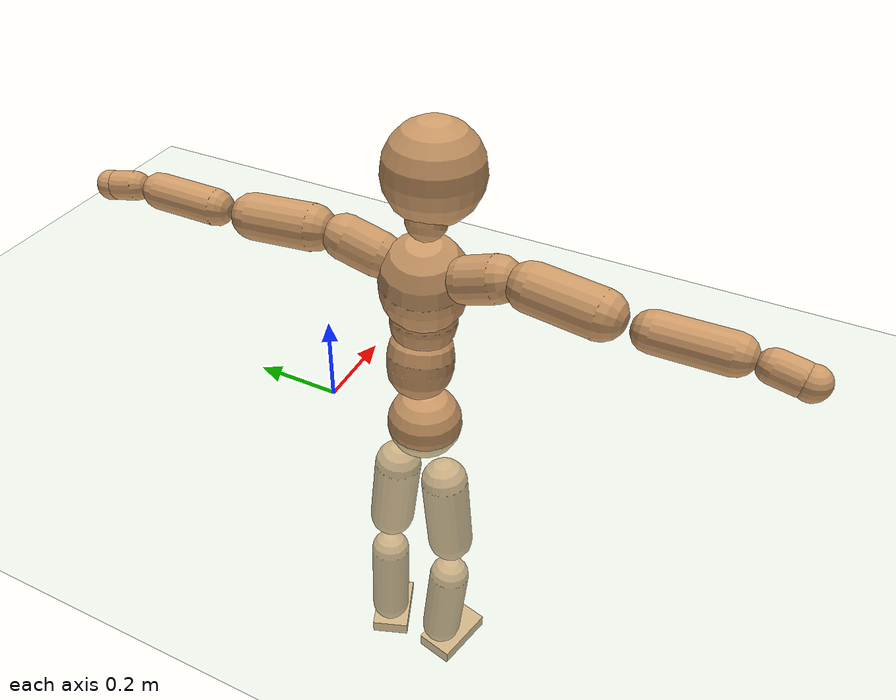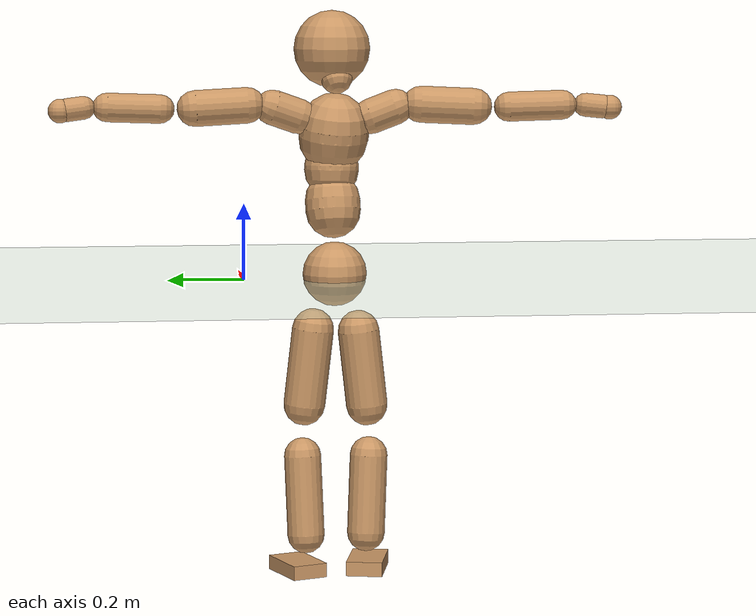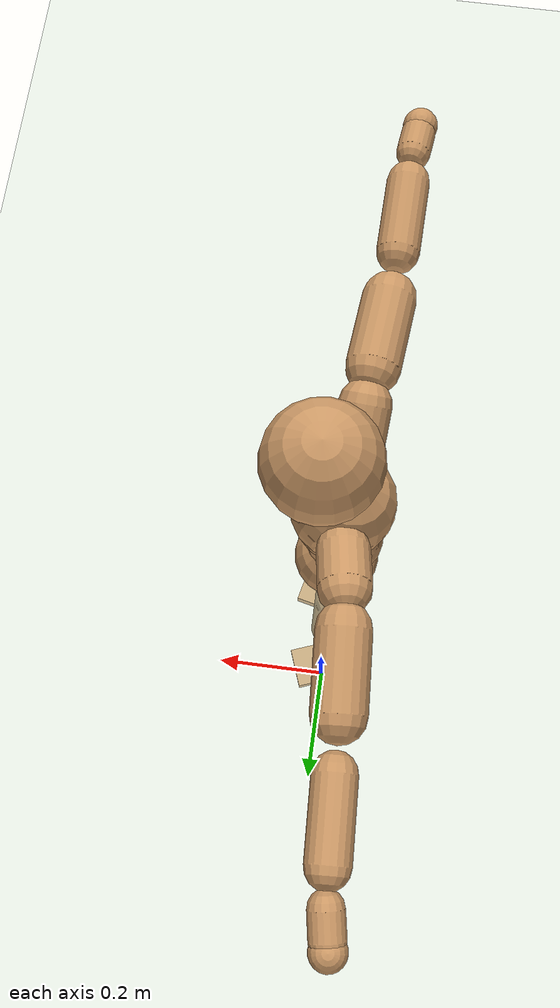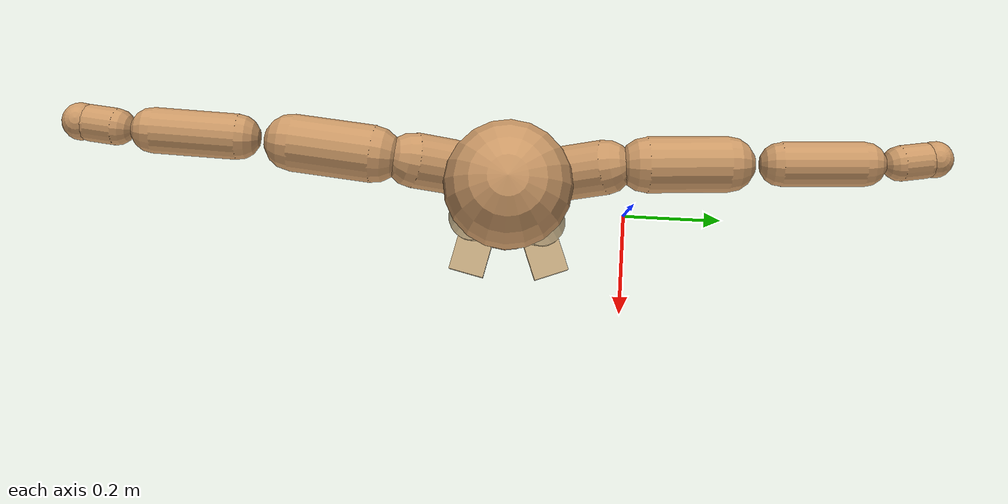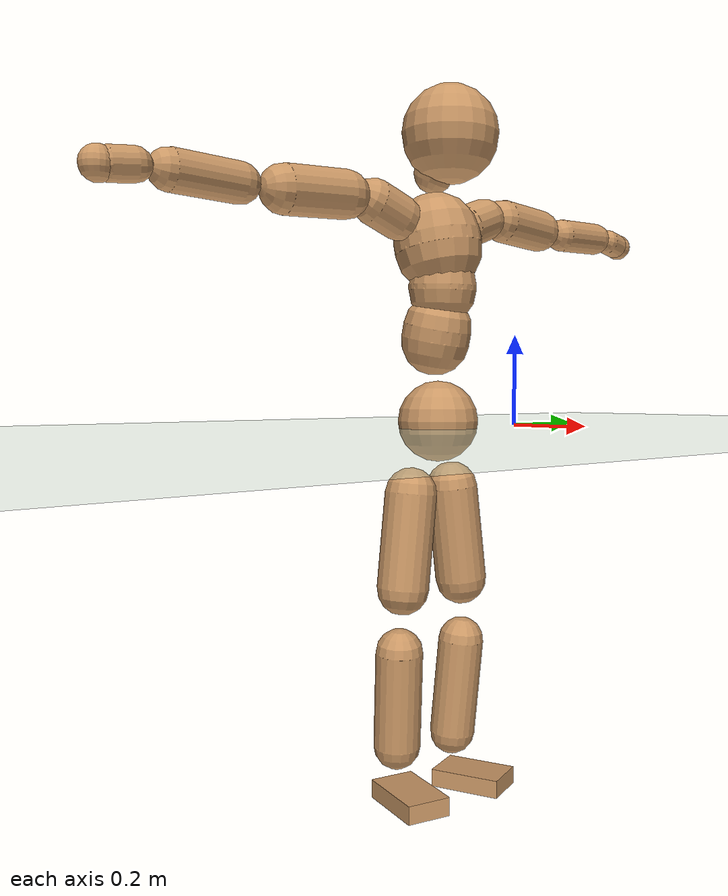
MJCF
<mujoco model="humanoid">
  <compiler coordinate="local" angle="radian"/>
  <default>
    <joint damping="0.0" armature="0.01" stiffness="0.0" limited="true"/>
    <geom conaffinity="1" condim="3" contype="7" margin="0.001" rgba="0.8 0.6 .4 1"/>
  </default>
  <asset>
    <texture type="skybox" builtin="gradient" rgb1=".4 .5 .6" rgb2="0 0 0" width="100" height="100"/>
    <texture builtin="flat" height="1278" mark="cross" markrgb="1 1 1" name="texgeom" random="0.01" rgb1="0.8 0.6 0.4" rgb2="0.8 0.6 0.4" type="cube" width="127"/>
    <texture builtin="checker" height="100" name="texplane" rgb1="0 0 0" rgb2="0.8 0.8 0.8" type="2d" width="100"/>
    <material name="MatPlane" reflectance="0.5" shininess="1" specular="1" texrepeat="60 60" texture="texplane"/>
    <material name="geom" texture="texgeom" texuniform="true"/>
  </asset>
  <worldbody>
    <light cutoff="100" diffuse="1 1 1" dir="-0 0 -1.3" directional="true" exponent="1" pos="0 0 1.3" specular=".1 .1 .1"/>
    <geom conaffinity="1" condim="3" name="floor" pos="0 0 0" rgba="0.8 0.9 0.8 1" size="100 100 .2" type="plane" material="MatPlane"/>
    <body name="Pelvis" pos="-0.0015 -0.2397 0.0129">
      <freejoint name="Pelvis"/>
      <geom type="sphere" contype="1" conaffinity="1" density="500" size="0.0849" pos="0.0000 0.0000 0.0000" name="Pelvis"/>
      <body name="L_Hip" pos="-0.0205 0.0519 -0.0765">
        <joint name="L_Hip_x" type="hinge" pos="0 0 0" axis="1 0 0" stiffness="800" damping="80" armature="0.02" range="-180.0000 180.0000"/>
        <joint name="L_Hip_y" type="hinge" pos="0 0 0" axis="0 1 0" stiffness="800" damping="80" armature="0.02" range="-180.0000 180.0000"/>
        <joint name="L_Hip_z" type="hinge" pos="0 0 0" axis="0 0 1" stiffness="800" damping="80" armature="0.02" range="-180.0000 180.0000"/>
        <geom type="capsule" contype="1" conaffinity="1" density="500" fromto="0.0019 0.0076 -0.0675 0.0074 0.0303 -0.2699" size="0.0549" name="L_Hip"/>
        <body name="L_Knee" pos="0.0093 0.0379 -0.3374">
          <joint name="L_Knee_x" type="hinge" pos="0 0 0" axis="1 0 0" stiffness="800" damping="80" armature="0.02" range="-180.0000 180.0000"/>
          <joint name="L_Knee_y" type="hinge" pos="0 0 0" axis="0 1 0" stiffness="800" damping="80" armature="0.02" range="-180.0000 180.0000"/>
          <joint name="L_Knee_z" type="hinge" pos="0 0 0" axis="0 0 1" stiffness="800" damping="80" armature="0.02" range="-180.0000 180.0000"/>
          <geom type="capsule" contype="1" conaffinity="1" density="500" fromto="-0.0065 -0.0023 -0.0697 -0.0261 -0.0092 -0.2786" size="0.0491" name="L_Knee"/>
          <body name="L_Ankle" pos="-0.0326 -0.0115 -0.3483">
            <joint name="L_Ankle_x" type="hinge" pos="0 0 0" axis="1 0 0" stiffness="800" damping="80" armature="0.02" range="-180.0000 180.0000"/>
            <joint name="L_Ankle_y" type="hinge" pos="0 0 0" axis="0 1 0" stiffness="800" damping="80" armature="0.02" range="-180.0000 180.0000"/>
            <joint name="L_Ankle_z" type="hinge" pos="0 0 0" axis="0 0 1" stiffness="800" damping="80" armature="0.02" range="-180.0000 180.0000"/>
            <geom type="box" contype="1" conaffinity="1" density="500" pos="0.0536 0.0200 -0.0261" size="0.0769 0.0482 0.0188" quat="0.9841 0.0000 0.0000 0.1777" name="L_Ankle"/>
            <body name="L_Toe" pos="0.1072 0.04 -0.0521">
              <joint name="L_Toe_x" type="hinge" pos="0 0 0" axis="1 0 0" stiffness="500" damping="50" armature="0.02" range="-180.0000 180.0000"/>
              <joint name="L_Toe_y" type="hinge" pos="0 0 0" axis="0 1 0" stiffness="500" damping="50" armature="0.02" range="-180.0000 180.0000"/>
              <joint name="L_Toe_z" type="hinge" pos="0 0 0" axis="0 0 1" stiffness="500" damping="50" armature="0.02" range="-180.0000 180.0000"/>
              <geom type="box" contype="1" conaffinity="1" density="500" pos="0.0000 0.0000 0.0267" size="0.001 0.0023 0.001" quat="0.9832 0.0000 0.0000 0.1827" name="L_Toe"/>
            </body>
          </body>
        </body>
      </body>
      <body name="R_Hip" pos="-0.0172 -0.0541 -0.084">
        <joint name="R_Hip_x" type="hinge" pos="0 0 0" axis="1 0 0" stiffness="800" damping="80" armature="0.02" range="-180.0000 180.0000"/>
        <joint name="R_Hip_y" type="hinge" pos="0 0 0" axis="0 1 0" stiffness="800" damping="80" armature="0.02" range="-180.0000 180.0000"/>
        <joint name="R_Hip_z" type="hinge" pos="0 0 0" axis="0 0 1" stiffness="800" damping="80" armature="0.02" range="-180.0000 180.0000"/>
        <geom type="capsule" contype="1" conaffinity="1" density="500" fromto="-0.0002 -0.0074 -0.0662 -0.0010 -0.0296 -0.2650" size="0.0545" name="R_Hip"/>
        <body name="R_Knee" pos="-0.0012 -0.037 -0.3312">
          <joint name="R_Knee_x" type="hinge" pos="0 0 0" axis="1 0 0" stiffness="800" damping="80" armature="0.02" range="-180.0000 180.0000"/>
          <joint name="R_Knee_y" type="hinge" pos="0 0 0" axis="0 1 0" stiffness="800" damping="80" armature="0.02" range="-180.0000 180.0000"/>
          <joint name="R_Knee_z" type="hinge" pos="0 0 0" axis="0 0 1" stiffness="800" damping="80" armature="0.02" range="-180.0000 180.0000"/>
          <geom type="capsule" contype="1" conaffinity="1" density="500" fromto="-0.0060 0.0031 -0.0683 -0.0242 0.0123 -0.2731" size="0.0499" name="R_Knee"/>
          <body name="R_Ankle" pos="-0.0302 0.0154 -0.3414">
            <joint name="R_Ankle_x" type="hinge" pos="0 0 0" axis="1 0 0" stiffness="800" damping="80" armature="0.02" range="-180.0000 180.0000"/>
            <joint name="R_Ankle_y" type="hinge" pos="0 0 0" axis="0 1 0" stiffness="800" damping="80" armature="0.02" range="-180.0000 180.0000"/>
            <joint name="R_Ankle_z" type="hinge" pos="0 0 0" axis="0 0 1" stiffness="800" damping="80" armature="0.02" range="-180.0000 180.0000"/>
            <geom type="box" contype="1" conaffinity="1" density="500" pos="0.0577 -0.0134 -0.0269" size="0.0811 0.0478 0.0191" quat="0.9935 0.0000 0.0000 -0.1136" name="R_Ankle"/>
            <body name="R_Toe" pos="0.1155 -0.0267 -0.0537">
              <joint name="R_Toe_x" type="hinge" pos="0 0 0" axis="1 0 0" stiffness="500" damping="50" armature="0.02" range="-180.0000 180.0000"/>
              <joint name="R_Toe_y" type="hinge" pos="0 0 0" axis="0 1 0" stiffness="500" damping="50" armature="0.02" range="-180.0000 180.0000"/>
              <joint name="R_Toe_z" type="hinge" pos="0 0 0" axis="0 0 1" stiffness="500" damping="50" armature="0.02" range="-180.0000 180.0000"/>
              <geom type="box" contype="1" conaffinity="1" density="500" pos="0.0000 0.0000 0.0292" size="0.0009 0.0023 0.0011" quat="0.9946 0.0000 0.0000 -0.1036" name="R_Toe"/>
            </body>
          </body>
        </body>
      </body>
      <body name="Torso" pos="-0.027 0.0035 0.1136">
        <joint name="Torso_x" type="hinge" pos="0 0 0" axis="1 0 0" stiffness="1000" damping="100" armature="0.02" range="-180.0000 180.0000"/>
        <joint name="Torso_y" type="hinge" pos="0 0 0" axis="0 1 0" stiffness="1000" damping="100" armature="0.02" range="-180.0000 180.0000"/>
        <joint name="Torso_z" type="hinge" pos="0 0 0" axis="0 0 1" stiffness="1000" damping="100" armature="0.02" range="-180.0000 180.0000"/>
        <geom type="capsule" contype="1" conaffinity="1" density="500" fromto="0.0180 0.0031 0.0829 0.0120 0.0021 0.0553" size="0.0725" name="Torso"/>
        <body name="Spine" pos="0.03 0.0052 0.1382">
          <joint name="Spine_x" type="hinge" pos="0 0 0" axis="1 0 0" stiffness="1000" damping="100" armature="0.02" range="-180.0000 180.0000"/>
          <joint name="Spine_y" type="hinge" pos="0 0 0" axis="0 1 0" stiffness="1000" damping="100" armature="0.02" range="-180.0000 180.0000"/>
          <joint name="Spine_z" type="hinge" pos="0 0 0" axis="0 0 1" stiffness="1000" damping="100" armature="0.02" range="-180.0000 180.0000"/>
          <geom type="capsule" contype="1" conaffinity="1" density="500" fromto="0.0018 -0.0009 0.0332 0.0012 -0.0006 0.0221" size="0.0716" name="Spine"/>
          <body name="Chest" pos="0.0031 -0.0015 0.0553">
            <joint name="Chest_x" type="hinge" pos="0 0 0" axis="1 0 0" stiffness="1000" damping="100" armature="0.02" range="-180.0000 180.0000"/>
            <joint name="Chest_y" type="hinge" pos="0 0 0" axis="0 1 0" stiffness="1000" damping="100" armature="0.02" range="-180.0000 180.0000"/>
            <joint name="Chest_z" type="hinge" pos="0 0 0" axis="0 0 1" stiffness="1000" damping="100" armature="0.02" range="-180.0000 180.0000"/>
            <geom type="capsule" contype="1" conaffinity="1" density="500" fromto="-0.0135 -0.0053 0.0784 -0.0090 -0.0035 0.0523" size="0.0917" name="Chest"/>
            <body name="Neck" pos="-0.0263 -0.0127 0.1909">
              <joint name="Neck_x" type="hinge" pos="0 0 0" axis="1 0 0" stiffness="500" damping="50" armature="0.02" range="-180.0000 180.0000"/>
              <joint name="Neck_y" type="hinge" pos="0 0 0" axis="0 1 0" stiffness="500" damping="50" armature="0.02" range="-180.0000 180.0000"/>
              <joint name="Neck_z" type="hinge" pos="0 0 0" axis="0 0 1" stiffness="500" damping="50" armature="0.02" range="-180.0000 180.0000"/>
              <geom type="capsule" contype="1" conaffinity="1" density="500" fromto="0.0104 0.0019 0.0185 0.0415 0.0075 0.0738" size="0.0423" name="Neck"/>
              <body name="Head" pos="0.0518 0.0094 0.0923">
                <joint name="Head_x" type="hinge" pos="0 0 0" axis="1 0 0" stiffness="500" damping="50" armature="0.02" range="-180.0000 180.0000"/>
                <joint name="Head_y" type="hinge" pos="0 0 0" axis="0 1 0" stiffness="500" damping="50" armature="0.02" range="-180.0000 180.0000"/>
                <joint name="Head_z" type="hinge" pos="0 0 0" axis="0 0 1" stiffness="500" damping="50" armature="0.02" range="-180.0000 180.0000"/>
                <geom type="sphere" contype="1" conaffinity="1" density="500" size="0.1008" pos="0.0000 0.0000 0.0000" name="Head"/>
              </body>
            </body>
            <body name="L_Thorax" pos="-0.0187 0.0655 0.1007">
              <joint name="L_Thorax_x" type="hinge" pos="0 0 0" axis="1 0 0" stiffness="500" damping="50" armature="0.02" range="-180.0000 180.0000"/>
              <joint name="L_Thorax_y" type="hinge" pos="0 0 0" axis="0 1 0" stiffness="500" damping="50" armature="0.02" range="-180.0000 180.0000"/>
              <joint name="L_Thorax_z" type="hinge" pos="0 0 0" axis="0 0 1" stiffness="500" damping="50" armature="0.02" range="-180.0000 180.0000"/>
              <geom type="capsule" contype="1" conaffinity="1" density="500" fromto="-0.0034 0.0229 0.0083 -0.0138 0.0917 0.0331" size="0.0462" name="L_Thorax"/>
              <body name="L_Shoulder" pos="-0.0172 0.1146 0.0414">
                <joint name="L_Shoulder_x" type="hinge" pos="0 0 0" axis="1 0 0" stiffness="500" damping="50" armature="0.02" range="-720.0000 720.0000"/>
                <joint name="L_Shoulder_y" type="hinge" pos="0 0 0" axis="0 1 0" stiffness="500" damping="50" armature="0.02" range="-720.0000 720.0000"/>
                <joint name="L_Shoulder_z" type="hinge" pos="0 0 0" axis="0 0 1" stiffness="500" damping="50" armature="0.02" range="-720.0000 720.0000"/>
                <geom type="capsule" contype="1" conaffinity="1" density="500" fromto="-0.0028 0.0451 -0.0022 -0.0113 0.1804 -0.0090" size="0.0473" name="L_Shoulder"/>
                <body name="L_Elbow" pos="-0.0141 0.2255 -0.0112">
                  <joint name="L_Elbow_x" type="hinge" pos="0 0 0" axis="1 0 0" stiffness="500" damping="50" armature="0.02" range="-720.0000 720.0000"/>
                  <joint name="L_Elbow_y" type="hinge" pos="0 0 0" axis="0 1 0" stiffness="500" damping="50" armature="0.02" range="-720.0000 720.0000"/>
                  <joint name="L_Elbow_z" type="hinge" pos="0 0 0" axis="0 0 1" stiffness="500" damping="50" armature="0.02" range="-720.0000 720.0000"/>
                  <geom type="capsule" contype="1" conaffinity="1" density="500" fromto="-0.0020 0.0454 0.0017 -0.0079 0.1815 0.0069" size="0.0377" name="L_Elbow"/>
                  <body name="L_Wrist" pos="-0.0099 0.2269 0.0086">
                    <joint name="L_Wrist_x" type="hinge" pos="0 0 0" axis="1 0 0" stiffness="300" damping="30" armature="0.02" range="-180.0000 180.0000"/>
                    <joint name="L_Wrist_y" type="hinge" pos="0 0 0" axis="0 1 0" stiffness="300" damping="30" armature="0.02" range="-180.0000 180.0000"/>
                    <joint name="L_Wrist_z" type="hinge" pos="0 0 0" axis="0 0 1" stiffness="300" damping="30" armature="0.02" range="-180.0000 180.0000"/>
                    <geom type="capsule" contype="1" conaffinity="1" density="500" fromto="-0.0027 0.0151 -0.0019 -0.0106 0.0603 -0.0075" size="0.03" name="L_Wrist"/>
                    <body name="L_Hand" pos="-0.0133 0.0753 -0.0094">
                      <joint name="L_Hand_x" type="hinge" pos="0 0 0" axis="1 0 0" stiffness="300" damping="30" armature="0.02" range="-180.0000 180.0000"/>
                      <joint name="L_Hand_y" type="hinge" pos="0 0 0" axis="0 1 0" stiffness="300" damping="30" armature="0.02" range="-180.0000 180.0000"/>
                      <joint name="L_Hand_z" type="hinge" pos="0 0 0" axis="0 0 1" stiffness="300" damping="30" armature="0.02" range="-180.0000 180.0000"/>
                      <geom type="sphere" contype="1" conaffinity="1" density="500" size="0.0311" pos="0.0000 0.0000 0.0000" name="L_Hand"/>
                    </body>
                  </body>
                </body>
              </body>
            </body>
            <body name="R_Thorax" pos="-0.0226 -0.0791 0.1002">
              <joint name="R_Thorax_x" type="hinge" pos="0 0 0" axis="1 0 0" stiffness="500" damping="50" armature="0.02" range="-180.0000 180.0000"/>
              <joint name="R_Thorax_y" type="hinge" pos="0 0 0" axis="0 1 0" stiffness="500" damping="50" armature="0.02" range="-180.0000 180.0000"/>
              <joint name="R_Thorax_z" type="hinge" pos="0 0 0" axis="0 0 1" stiffness="500" damping="50" armature="0.02" range="-180.0000 180.0000"/>
              <geom type="capsule" contype="1" conaffinity="1" density="500" fromto="-0.0015 -0.0213 0.0083 -0.0060 -0.0852 0.0331" size="0.0468" name="R_Thorax"/>
              <body name="R_Shoulder" pos="-0.0075 -0.1065 0.0414">
                <joint name="R_Shoulder_x" type="hinge" pos="0 0 0" axis="1 0 0" stiffness="500" damping="50" armature="0.02" range="-720.0000 720.0000"/>
                <joint name="R_Shoulder_y" type="hinge" pos="0 0 0" axis="0 1 0" stiffness="500" damping="50" armature="0.02" range="-720.0000 720.0000"/>
                <joint name="R_Shoulder_z" type="hinge" pos="0 0 0" axis="0 0 1" stiffness="500" damping="50" armature="0.02" range="-720.0000 720.0000"/>
                <geom type="capsule" contype="1" conaffinity="1" density="500" fromto="-0.0044 -0.0456 -0.0019 -0.0178 -0.1825 -0.0078" size="0.0484" name="R_Shoulder"/>
                <body name="R_Elbow" pos="-0.0222 -0.2281 -0.0097">
                  <joint name="R_Elbow_x" type="hinge" pos="0 0 0" axis="1 0 0" stiffness="500" damping="50" armature="0.02" range="-720.0000 720.0000"/>
                  <joint name="R_Elbow_y" type="hinge" pos="0 0 0" axis="0 1 0" stiffness="500" damping="50" armature="0.02" range="-720.0000 720.0000"/>
                  <joint name="R_Elbow_z" type="hinge" pos="0 0 0" axis="0 0 1" stiffness="500" damping="50" armature="0.02" range="-720.0000 720.0000"/>
                  <geom type="capsule" contype="1" conaffinity="1" density="500" fromto="-0.0011 -0.0468 0.0013 -0.0045 -0.1870 0.0054" size="0.0388" name="R_Elbow"/>
                  <body name="R_Wrist" pos="-0.0057 -0.2338 0.0067">
                    <joint name="R_Wrist_x" type="hinge" pos="0 0 0" axis="1 0 0" stiffness="300" damping="30" armature="0.02" range="-180.0000 180.0000"/>
                    <joint name="R_Wrist_y" type="hinge" pos="0 0 0" axis="0 1 0" stiffness="300" damping="30" armature="0.02" range="-180.0000 180.0000"/>
                    <joint name="R_Wrist_z" type="hinge" pos="0 0 0" axis="0 0 1" stiffness="300" damping="30" armature="0.02" range="-180.0000 180.0000"/>
                    <geom type="capsule" contype="1" conaffinity="1" density="500" fromto="-0.0018 -0.0157 -0.0015 -0.0071 -0.0627 -0.0061" size="0.0311" name="R_Wrist"/>
                    <body name="R_Hand" pos="-0.0089 -0.0784 -0.0076">
                      <joint name="R_Hand_x" type="hinge" pos="0 0 0" axis="1 0 0" stiffness="300" damping="30" armature="0.02" range="-180.0000 180.0000"/>
                      <joint name="R_Hand_y" type="hinge" pos="0 0 0" axis="0 1 0" stiffness="300" damping="30" armature="0.02" range="-180.0000 180.0000"/>
                      <joint name="R_Hand_z" type="hinge" pos="0 0 0" axis="0 0 1" stiffness="300" damping="30" armature="0.02" range="-180.0000 180.0000"/>
                      <geom type="sphere" contype="1" conaffinity="1" density="500" size="0.0320" pos="0.0000 0.0000 0.0000" name="R_Hand"/>
                    </body>
                  </body>
                </body>
              </body>
            </body>
          </body>
        </body>
      </body>
    </body>
  </worldbody>
  <actuator>
    <motor name="L_Hip_x" joint="L_Hip_x" gear="500"/>
    <motor name="L_Hip_y" joint="L_Hip_y" gear="500"/>
    <motor name="L_Hip_z" joint="L_Hip_z" gear="500"/>
    <motor name="L_Knee_x" joint="L_Knee_x" gear="500"/>
    <motor name="L_Knee_y" joint="L_Knee_y" gear="500"/>
    <motor name="L_Knee_z" joint="L_Knee_z" gear="500"/>
    <motor name="L_Ankle_x" joint="L_Ankle_x" gear="500"/>
    <motor name="L_Ankle_y" joint="L_Ankle_y" gear="500"/>
    <motor name="L_Ankle_z" joint="L_Ankle_z" gear="500"/>
    <motor name="L_Toe_x" joint="L_Toe_x" gear="500"/>
    <motor name="L_Toe_y" joint="L_Toe_y" gear="500"/>
    <motor name="L_Toe_z" joint="L_Toe_z" gear="500"/>
    <motor name="R_Hip_x" joint="R_Hip_x" gear="500"/>
    <motor name="R_Hip_y" joint="R_Hip_y" gear="500"/>
    <motor name="R_Hip_z" joint="R_Hip_z" gear="500"/>
    <motor name="R_Knee_x" joint="R_Knee_x" gear="500"/>
    <motor name="R_Knee_y" joint="R_Knee_y" gear="500"/>
    <motor name="R_Knee_z" joint="R_Knee_z" gear="500"/>
    <motor name="R_Ankle_x" joint="R_Ankle_x" gear="500"/>
    <motor name="R_Ankle_y" joint="R_Ankle_y" gear="500"/>
    <motor name="R_Ankle_z" joint="R_Ankle_z" gear="500"/>
    <motor name="R_Toe_x" joint="R_Toe_x" gear="500"/>
    <motor name="R_Toe_y" joint="R_Toe_y" gear="500"/>
    <motor name="R_Toe_z" joint="R_Toe_z" gear="500"/>
    <motor name="Torso_x" joint="Torso_x" gear="500"/>
    <motor name="Torso_y" joint="Torso_y" gear="500"/>
    <motor name="Torso_z" joint="Torso_z" gear="500"/>
    <motor name="Spine_x" joint="Spine_x" gear="500"/>
    <motor name="Spine_y" joint="Spine_y" gear="500"/>
    <motor name="Spine_z" joint="Spine_z" gear="500"/>
    <motor name="Chest_x" joint="Chest_x" gear="500"/>
    <motor name="Chest_y" joint="Chest_y" gear="500"/>
    <motor name="Chest_z" joint="Chest_z" gear="500"/>
    <motor name="Neck_x" joint="Neck_x" gear="500"/>
    <motor name="Neck_y" joint="Neck_y" gear="500"/>
    <motor name="Neck_z" joint="Neck_z" gear="500"/>
    <motor name="Head_x" joint="Head_x" gear="500"/>
    <motor name="Head_y" joint="Head_y" gear="500"/>
    <motor name="Head_z" joint="Head_z" gear="500"/>
    <motor name="L_Thorax_x" joint="L_Thorax_x" gear="500"/>
    <motor name="L_Thorax_y" joint="L_Thorax_y" gear="500"/>
    <motor name="L_Thorax_z" joint="L_Thorax_z" gear="500"/>
    <motor name="L_Shoulder_x" joint="L_Shoulder_x" gear="500"/>
    <motor name="L_Shoulder_y" joint="L_Shoulder_y" gear="500"/>
    <motor name="L_Shoulder_z" joint="L_Shoulder_z" gear="500"/>
    <motor name="L_Elbow_x" joint="L_Elbow_x" gear="500"/>
    <motor name="L_Elbow_y" joint="L_Elbow_y" gear="500"/>
    <motor name="L_Elbow_z" joint="L_Elbow_z" gear="500"/>
    <motor name="L_Wrist_x" joint="L_Wrist_x" gear="500"/>
    <motor name="L_Wrist_y" joint="L_Wrist_y" gear="500"/>
    <motor name="L_Wrist_z" joint="L_Wrist_z" gear="500"/>
    <motor name="L_Hand_x" joint="L_Hand_x" gear="500"/>
    <motor name="L_Hand_y" joint="L_Hand_y" gear="500"/>
    <motor name="L_Hand_z" joint="L_Hand_z" gear="500"/>
    <motor name="R_Thorax_x" joint="R_Thorax_x" gear="500"/>
    <motor name="R_Thorax_y" joint="R_Thorax_y" gear="500"/>
    <motor name="R_Thorax_z" joint="R_Thorax_z" gear="500"/>
    <motor name="R_Shoulder_x" joint="R_Shoulder_x" gear="500"/>
    <motor name="R_Shoulder_y" joint="R_Shoulder_y" gear="500"/>
    <motor name="R_Shoulder_z" joint="R_Shoulder_z" gear="500"/>
    <motor name="R_Elbow_x" joint="R_Elbow_x" gear="500"/>
    <motor name="R_Elbow_y" joint="R_Elbow_y" gear="500"/>
    <motor name="R_Elbow_z" joint="R_Elbow_z" gear="500"/>
    <motor name="R_Wrist_x" joint="R_Wrist_x" gear="500"/>
    <motor name="R_Wrist_y" joint="R_Wrist_y" gear="500"/>
    <motor name="R_Wrist_z" joint="R_Wrist_z" gear="500"/>
    <motor name="R_Hand_x" joint="R_Hand_x" gear="500"/>
    <motor name="R_Hand_y" joint="R_Hand_y" gear="500"/>
    <motor name="R_Hand_z" joint="R_Hand_z" gear="500"/>
  </actuator>
  <contact>
    <exclude body1="Torso" body2="Chest"/>
    <exclude body1="Head" body2="Chest"/>
    <exclude body1="R_Knee" body2="R_Toe"/>
    <exclude body1="R_Knee" body2="L_Ankle"/>
    <exclude body1="R_Knee" body2="L_Toe"/>
    <exclude body1="L_Knee" body2="L_Toe"/>
    <exclude body1="L_Knee" body2="R_Ankle"/>
    <exclude body1="L_Knee" body2="R_Toe"/>
    <exclude body1="L_Shoulder" body2="Chest"/>
    <exclude body1="R_Shoulder" body2="Chest"/>
  </contact>
  <sensor/>
  <size njmax="700" nconmax="700"/>
</mujoco>
